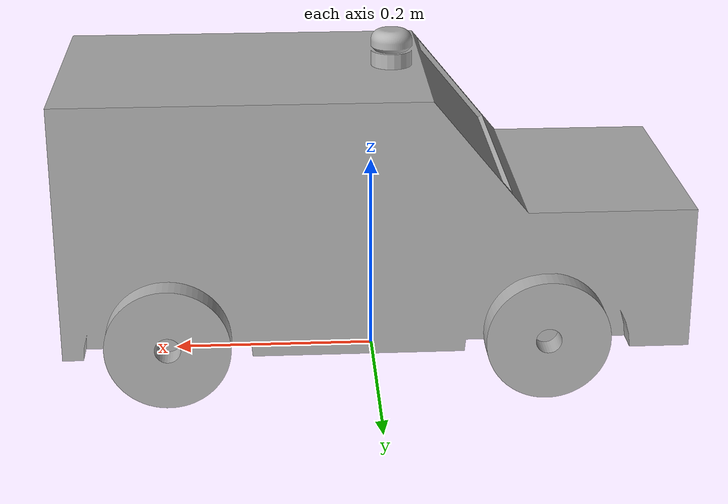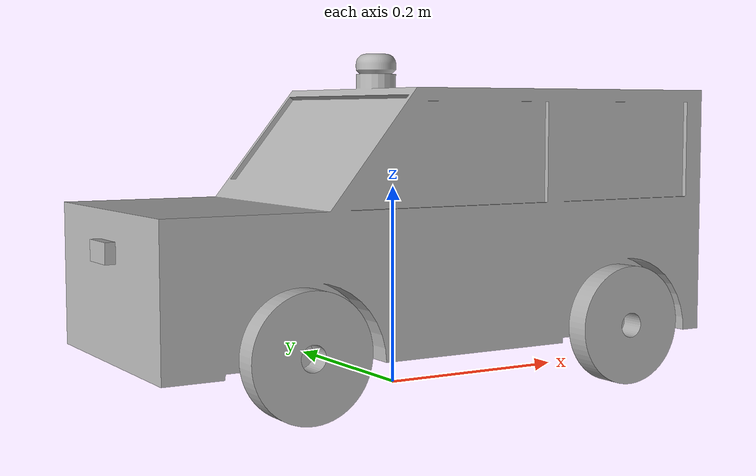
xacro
<?xml version="1.0" ?>
<robot name="kb_car2" xmlns:xacro="http://www.ros.org/wiki/xacro">

<xacro:include filename="$(find kb_car2_description)/urdf/materials.xacro" />
<xacro:include filename="$(find kb_car2_description)/urdf/kb_car2.trans" />
<xacro:include filename="$(find kb_car2_description)/urdf/kb_car2.gazebo" />
<link name="base_link">
  <inertial>
    <origin xyz="0.03523362631813541 0.0006651541796579881 0.16118452473956904" rpy="0 0 0"/>
    <mass value="42.24177770791098"/>
    <inertia ixx="0.407922" iyy="1.31886" izz="1.326072" ixy="-0.001781" iyz="-0.002058" ixz="-0.128518"/>
  </inertial>
  <visual>
    <origin xyz="0 0 0" rpy="0 0 0"/>
    <geometry>
      <mesh filename="package://kb_car2_description/meshes/base_link.stl" scale="0.001 0.001 0.001"/>
    </geometry>
    <material name="silver"/>
  </visual>
  <collision>
    <origin xyz="0 0 0" rpy="0 0 0"/>
    <geometry>
      <mesh filename="package://kb_car2_description/meshes/base_link.stl" scale="0.001 0.001 0.001"/>
    </geometry>
  </collision>
</link>

<link name="left_wheel_front_1">
  <inertial>
    <origin xyz="-5.928590951498336e-14 0.012499999999999997 -1.1102230246251565e-16" rpy="0 0 0"/>
    <mass value="0.25153848804359596"/>
    <inertia ixx="0.000249" iyy="0.000472" izz="0.000249" ixy="0.0" iyz="0.0" ixz="0.0"/>
  </inertial>
  <visual>
    <origin xyz="0.1625 -0.11 -0.06" rpy="0 0 0"/>
    <geometry>
      <mesh filename="package://kb_car2_description/meshes/left_wheel_front_1.stl" scale="0.001 0.001 0.001"/>
    </geometry>
    <material name="silver"/>
  </visual>
  <collision>
    <origin xyz="0.1625 -0.11 -0.06" rpy="0 0 0"/>
    <geometry>
      <mesh filename="package://kb_car2_description/meshes/left_wheel_front_1.stl" scale="0.001 0.001 0.001"/>
    </geometry>
  </collision>
</link>

<link name="right_wheel_front_1">
  <inertial>
    <origin xyz="-5.928590951498336e-14 -0.012500000000000011 -1.1102230246251565e-16" rpy="0 0 0"/>
    <mass value="0.25153848804359596"/>
    <inertia ixx="0.000249" iyy="0.000472" izz="0.000249" ixy="-0.0" iyz="0.0" ixz="0.0"/>
  </inertial>
  <visual>
    <origin xyz="0.1625 0.11 -0.06" rpy="0 0 0"/>
    <geometry>
      <mesh filename="package://kb_car2_description/meshes/right_wheel_front_1.stl" scale="0.001 0.001 0.001"/>
    </geometry>
    <material name="silver"/>
  </visual>
  <collision>
    <origin xyz="0.1625 0.11 -0.06" rpy="0 0 0"/>
    <geometry>
      <mesh filename="package://kb_car2_description/meshes/right_wheel_front_1.stl" scale="0.001 0.001 0.001"/>
    </geometry>
  </collision>
</link>

<link name="left_wheel_back_1">
  <inertial>
    <origin xyz="-5.931366509059899e-14 0.012499999999999997 0.0" rpy="0 0 0"/>
    <mass value="0.25153848804359596"/>
    <inertia ixx="0.000249" iyy="0.000472" izz="0.000249" ixy="0.0" iyz="-0.0" ixz="-0.0"/>
  </inertial>
  <visual>
    <origin xyz="-0.2 -0.11 -0.06" rpy="0 0 0"/>
    <geometry>
      <mesh filename="package://kb_car2_description/meshes/left_wheel_back_1.stl" scale="0.001 0.001 0.001"/>
    </geometry>
    <material name="silver"/>
  </visual>
  <collision>
    <origin xyz="-0.2 -0.11 -0.06" rpy="0 0 0"/>
    <geometry>
      <mesh filename="package://kb_car2_description/meshes/left_wheel_back_1.stl" scale="0.001 0.001 0.001"/>
    </geometry>
  </collision>
</link>

<link name="right_wheel_back_1">
  <inertial>
    <origin xyz="-5.931366509059899e-14 -0.012500000000000011 0.0" rpy="0 0 0"/>
    <mass value="0.25153848804359596"/>
    <inertia ixx="0.000249" iyy="0.000472" izz="0.000249" ixy="-0.0" iyz="0.0" ixz="-0.0"/>
  </inertial>
  <visual>
    <origin xyz="-0.2 0.11 -0.06" rpy="0 0 0"/>
    <geometry>
      <mesh filename="package://kb_car2_description/meshes/right_wheel_back_1.stl" scale="0.001 0.001 0.001"/>
    </geometry>
    <material name="silver"/>
  </visual>
  <collision>
    <origin xyz="-0.2 0.11 -0.06" rpy="0 0 0"/>
    <geometry>
      <mesh filename="package://kb_car2_description/meshes/right_wheel_back_1.stl" scale="0.001 0.001 0.001"/>
    </geometry>
  </collision>
</link>

<link name="lidar_1">
  <inertial>
    <origin xyz="-3.469446951953614e-18 0.0 0.009531330817790062" rpy="0 0 0"/>
    <mass value="0.1711211417853653"/>
    <inertia ixx="2e-05" iyy="2e-05" izz="3.1e-05" ixy="0.0" iyz="-0.0" ixz="0.0"/>
  </inertial>
  <visual>
    <origin xyz="0.02 -0.0 -0.3125" rpy="0 0 0"/>
    <geometry>
      <mesh filename="package://kb_car2_description/meshes/lidar_1.stl" scale="0.001 0.001 0.001"/>
    </geometry>
    <material name="silver"/>
  </visual>
  <collision>
    <origin xyz="0.02 -0.0 -0.3125" rpy="0 0 0"/>
    <geometry>
      <mesh filename="package://kb_car2_description/meshes/lidar_1.stl" scale="0.001 0.001 0.001"/>
    </geometry>
  </collision>
</link>

<link name="camera_1">
  <inertial>
    <origin xyz="-0.004999999999999949 0.0 0.0325" rpy="0 0 0"/>
    <mass value="0.0628"/>
    <inertia ixx="1e-05" iyy="3e-06" izz="9e-06" ixy="0.0" iyz="0.0" ixz="0.0"/>
  </inertial>
  <visual>
    <origin xyz="0.3 -0.0 -0.1175" rpy="0 0 0"/>
    <geometry>
      <mesh filename="package://kb_car2_description/meshes/camera_1.stl" scale="0.001 0.001 0.001"/>
    </geometry>
    <material name="silver"/>
  </visual>
  <collision>
    <origin xyz="0.3 -0.0 -0.1175" rpy="0 0 0"/>
    <geometry>
      <mesh filename="package://kb_car2_description/meshes/camera_1.stl" scale="0.001 0.001 0.001"/>
    </geometry>
  </collision>
</link>

<joint name="Revolute 1" type="continuous">
  <origin xyz="-0.1625 0.11 0.06" rpy="0 0 0"/>
  <parent link="base_link"/>
  <child link="left_wheel_front_1"/>
  <axis xyz="0.0 1.0 0.0"/>
</joint>

<joint name="Revolute 2" type="continuous">
  <origin xyz="-0.1625 -0.11 0.06" rpy="0 0 0"/>
  <parent link="base_link"/>
  <child link="right_wheel_front_1"/>
  <axis xyz="0.0 -1.0 0.0"/>
</joint>

<joint name="Revolute 3" type="continuous">
  <origin xyz="0.2 0.11 0.06" rpy="0 0 0"/>
  <parent link="base_link"/>
  <child link="left_wheel_back_1"/>
  <axis xyz="0.0 1.0 0.0"/>
</joint>

<joint name="Revolute 4" type="continuous">
  <origin xyz="0.2 -0.11 0.06" rpy="0 0 0"/>
  <parent link="base_link"/>
  <child link="right_wheel_back_1"/>
  <axis xyz="0.0 -1.0 0.0"/>
</joint>

<joint name="Rigid 5" type="fixed">
  <origin xyz="-0.02 0.0 0.3125" rpy="0 0 0"/>
  <parent link="base_link"/>
  <child link="lidar_1"/>
</joint>

<joint name="Rigid 6" type="fixed">
  <origin xyz="-0.3 0.0 0.1175" rpy="0 0 0"/>
  <parent link="base_link"/>
  <child link="camera_1"/>
</joint>

</robot>

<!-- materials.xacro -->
<robot name="kb_car2" xmlns:xacro="http://www.ros.org/wiki/xacro" >

<material name="silver">
  <color rgba="0.700 0.700 0.700 1.000"/>
</material>

</robot>

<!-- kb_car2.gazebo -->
<robot name="kb_car2" xmlns:xacro="http://www.ros.org/wiki/xacro" >

<xacro:property name="body_color" value="Gazebo/Silver" />

<gazebo>
  <plugin name="control" filename="libgazebo_ros_control.so"/>
</gazebo>
<gazebo reference="base_link">
  <material>${body_color}</material>
  <mu1>0.2</mu1>
  <mu2>0.2</mu2>
  <selfCollide>true</selfCollide>
  <gravity>true</gravity>
</gazebo>

<gazebo reference="left_wheel_front_1">
  <material>${body_color}</material>
  <mu1>0.2</mu1>
  <mu2>0.2</mu2>
  <selfCollide>true</selfCollide>
</gazebo>

<gazebo reference="right_wheel_front_1">
  <material>${body_color}</material>
  <mu1>0.2</mu1>
  <mu2>0.2</mu2>
  <selfCollide>true</selfCollide>
</gazebo>

<gazebo reference="left_wheel_back_1">
  <material>${body_color}</material>
  <mu1>0.2</mu1>
  <mu2>0.2</mu2>
  <selfCollide>true</selfCollide>
</gazebo>

<gazebo reference="right_wheel_back_1">
  <material>${body_color}</material>
  <mu1>0.2</mu1>
  <mu2>0.2</mu2>
  <selfCollide>true</selfCollide>
</gazebo>

<gazebo reference="lidar_1">
  <material>${body_color}</material>
  <mu1>0.2</mu1>
  <mu2>0.2</mu2>
  <selfCollide>true</selfCollide>
</gazebo>

<gazebo reference="camera_1">
  <material>${body_color}</material>
  <mu1>0.2</mu1>
  <mu2>0.2</mu2>
  <selfCollide>true</selfCollide>
</gazebo>

<gazebo>
  <plugin name="differential_drive_controller" filename="libgazebo_ros_diff_drive.so">

    <!-- Plugin update rate in Hz -->
    <updateRate>100</updateRate>

    <!-- Name of left joint, defaults to `left_joint` -->
    <leftJoint>Revolute 1</leftJoint>

    <!-- Name of right joint, defaults to `right_joint` -->
    <rightJoint>Revolute 2</rightJoint>

    <!-- The distance from the center of one wheel to the other, in meters, defaults to 0.34 m -->
    <wheelSeparation>0.22</wheelSeparation>

    <!-- Diameter of the wheels, in meters, defaults to 0.15 m -->
    <wheelDiameter>0.12</wheelDiameter>

    <!-- Wheel acceleration, in rad/s^2, defaults to 0.0 rad/s^2 -->
    <wheelAcceleration>1.0</wheelAcceleration>

    <!-- Maximum torque which the wheels can produce, in Nm, defaults to 5 Nm -->
    <wheelTorque>20</wheelTorque>

    <!-- Topic to receive geometry_msgs/Twist message commands, defaults to `cmd_vel` -->
    <commandTopic>cmd_vel</commandTopic>

    <!-- Topic to publish nav_msgs/Odometry messages, defaults to `odom` -->
    <odometryTopic>odom</odometryTopic>

    <!-- Odometry frame, defaults to `odom` -->
    <odometryFrame>odom</odometryFrame>

    <!-- Robot frame to calculate odometry from, defaults to `base_footprint` -->
    <robotBaseFrame>base_link</robotBaseFrame>

    <!-- Odometry source, 0 for ENCODER, 1 for WORLD, defaults to WORLD -->
    <odometrySource>1</odometrySource>

    <!-- Set to true to publish transforms for the wheel links, defaults to false -->
    <publishWheelTF>true</publishWheelTF>

    <!-- Set to true to publish transforms for the odometry, defaults to true -->
    <publishOdom>true</publishOdom>

    <!-- Set to true to publish sensor_msgs/JointState on /joint_states for the wheel joints, defaults to false -->
    <publishWheelJointState>true</publishWheelJointState>

    <!-- Set to true to swap right and left wheels, defaults to true -->
    <legacyMode>false</legacyMode>
  </plugin>
</gazebo>

<!-- hokuyo -->
  <gazebo reference="lidar_1">
    <sensor type="ray" name="head_hokuyo_sensor">
      <pose>0 0 0 0 0 0</pose>
      <visualize>true</visualize>
      <update_rate>40</update_rate>
      <ray>
        <scan>
          <horizontal>
            <samples>720</samples>
            <resolution>1</resolution>
            <min_angle>-3.14</min_angle>
            <max_angle>3.14</max_angle>
          </horizontal>
        </scan>
        <range>
          <min>0.5</min>
          <max>20.0</max>
          <resolution>0.01</resolution>
        </range>
        <noise>
          <type>gaussian</type>
          <mean>0.0</mean>
          <stddev>0.01</stddev>
        </noise>
      </ray>
      <plugin name="gazebo_ros_head_hokuyo_controller" filename="libgazebo_ros_laser.so">
        <topicName>/rrbot/laser/scan</topicName>
        <frameName>lidar_1</frameName>
      </plugin>
    </sensor>
  </gazebo>

</robot>
